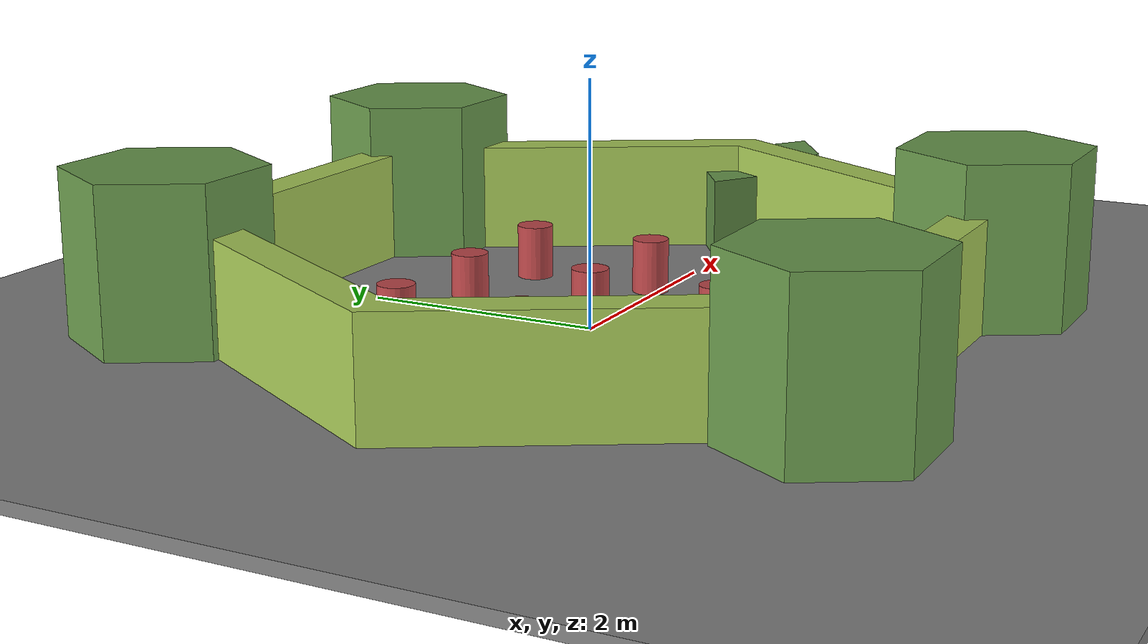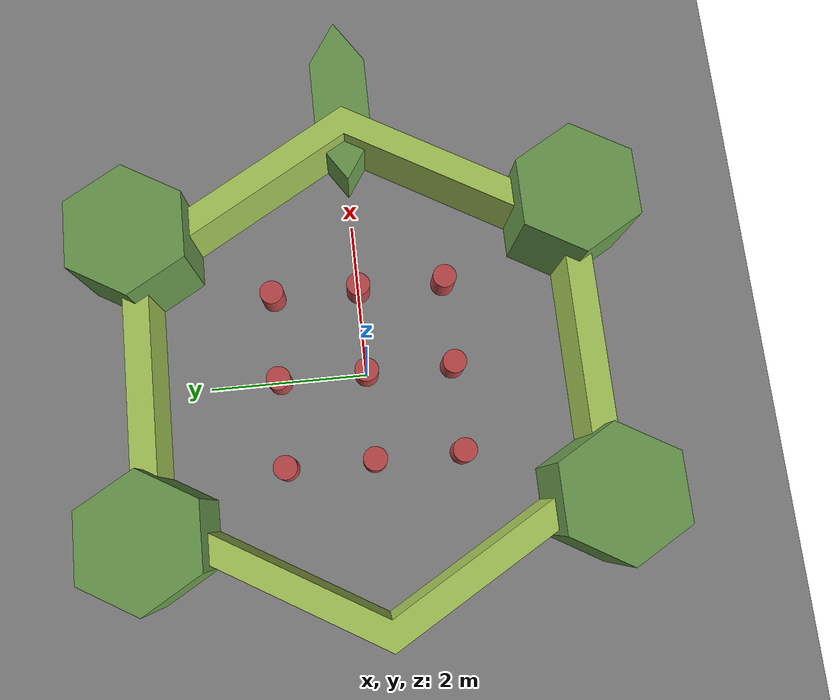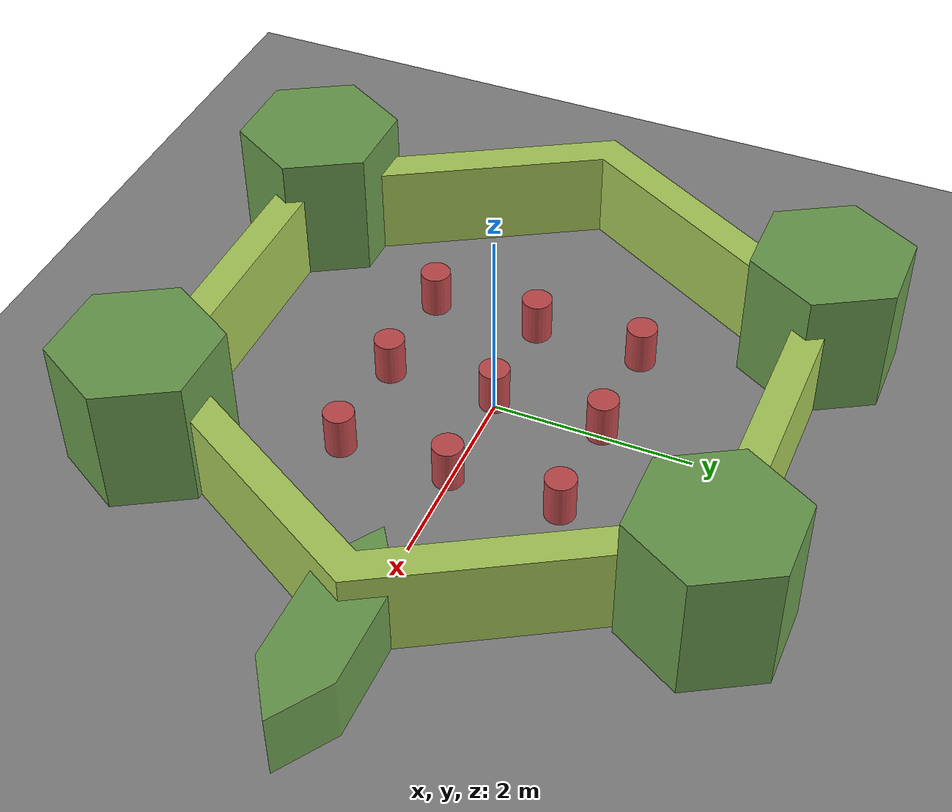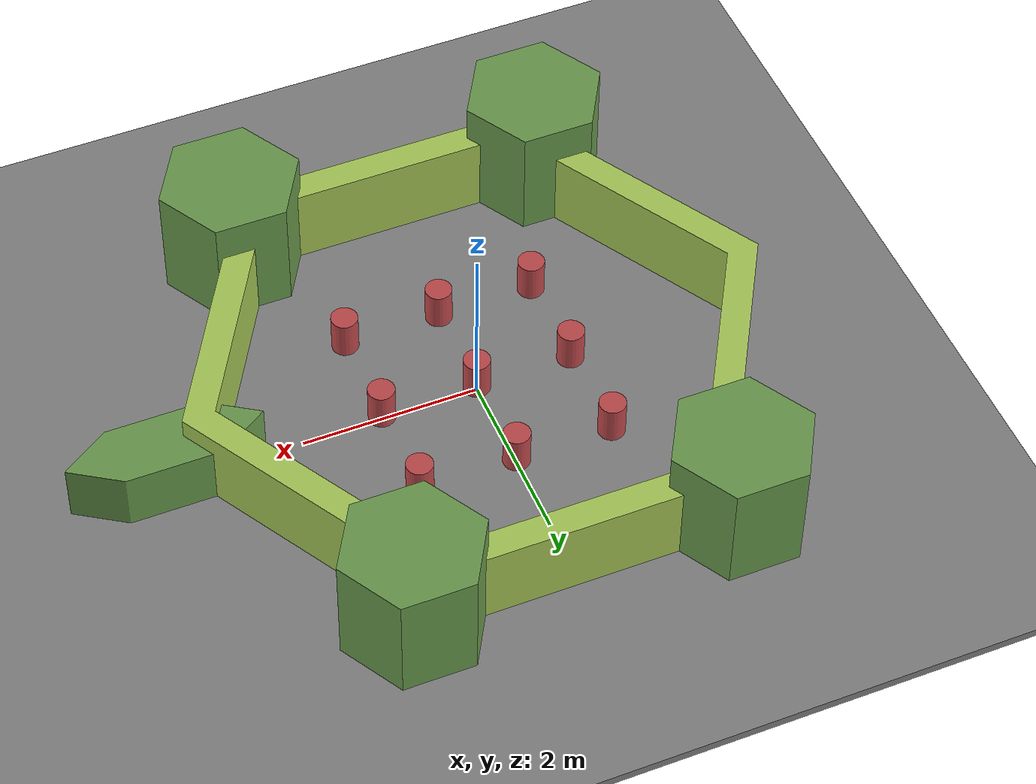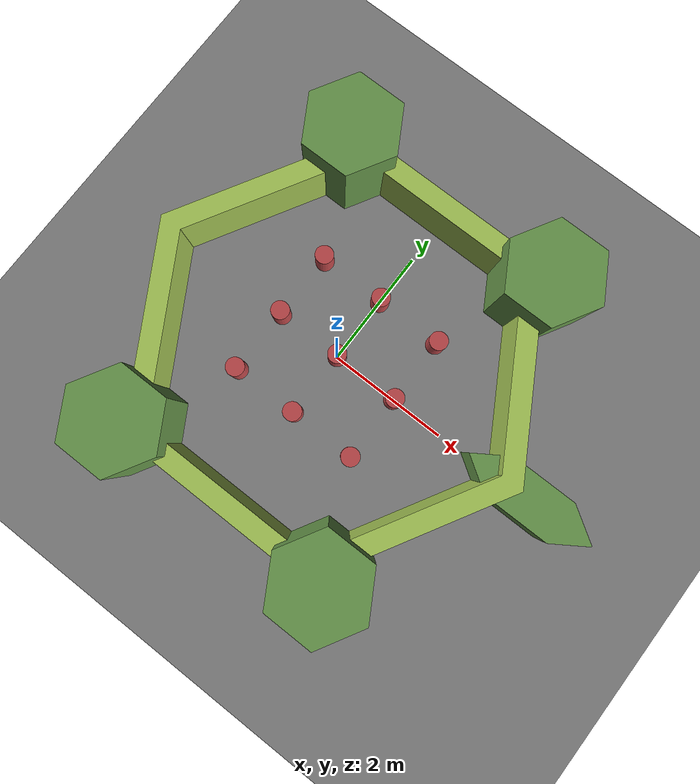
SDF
<?xml version="1.0" ?>
<sdf version="1.8">
  <world name="demo">
    <plugin
      filename="ignition-gazebo-physics-system"
      name="ignition::gazebo::systems::Physics">
    </plugin>
    <plugin
      filename="ignition-gazebo-sensors-system"
      name="ignition::gazebo::systems::Sensors">
      <render_engine>ogre2</render_engine>
    </plugin>
    <plugin
      filename="ignition-gazebo-scene-broadcaster-system"
      name="ignition::gazebo::systems::SceneBroadcaster">
    </plugin>
    <plugin
      filename="ignition-gazebo-user-commands-system"
      name="ignition::gazebo::systems::UserCommands">
    </plugin>

    <light name="sun" type="directional">
      <cast_shadows>true</cast_shadows>
      <pose>0 0 10 0 0 0</pose>
      <diffuse>0.8 0.8 0.8 1</diffuse>
      <specular>0.2 0.2 0.2 1</specular>
      <attenuation>
        <range>1000</range>
        <constant>0.9</constant>
        <linear>0.01</linear>
        <quadratic>0.001</quadratic>
      </attenuation>
      <direction>-0.5 0.1 -0.9</direction>
    </light>

    <model name="ground_plane">
      <static>true</static>
      <link name="link">
        <collision name="collision">
          <geometry>
            <plane>
              <normal>0 0 1</normal>
              <size>100 100</size>
            </plane>
          </geometry>
        </collision>
        <visual name="visual">
          <geometry>
            <plane>
              <normal>0 0 1</normal>
              <size>100 100</size>
            </plane>
          </geometry>
          <material>
            <ambient>0.8 0.8 0.8 1</ambient>
            <diffuse>0.8 0.8 0.8 1</diffuse>
            <specular>0.8 0.8 0.8 1</specular>
          </material>
        </visual>
      </link>
    </model>

    <model name="turtlebot3_world">
      <static>1</static>
      <include>
        <uri>model://turtlebot3_world</uri>
      </include>
    </model>

  </world>
</sdf>

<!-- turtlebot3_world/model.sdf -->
<sdf version='1.5'>
    <!-- Draw Circle -->
    <model name='ros_symbol'>
      <static>1</static>

    <link name="chao">

      <collision name="chao">
        <geometry>
          <plane>
            <normal>0 0 1</normal>
            <size>100 100</size>
          </plane>
        </geometry>

        <surface>
          <friction>
            <ode>
              <mu>0.5</mu>
              <mu2>0.5</mu2>
              <slip1>0.05</slip1>
              <slip2>0.05</slip2>
            </ode>
          </friction>

          <contact>
            <ode>
              <kp>100000</kp>
              <kd>1</kd>
            </ode>
          </contact>
        </surface>
      </collision>

      <visual name="chao">
        <geometry>
          <plane>
            <normal>0 0 1</normal>
            <size>100 100</size>
          </plane>
        </geometry>

        <material>
          <ambient>0.5 0.5 0.5 1</ambient>
          <diffuse>0.5 0.5 0.5 1</diffuse>
        </material>
      </visual>

    </link>

      <link name='symbol'>
        <collision name='one_one'>
          <pose>-1.1 -1.1 0.25 0 0 0</pose>
          <geometry>
            <cylinder>
              <radius>0.15</radius>
              <length>0.5</length>
            </cylinder>
          </geometry>
          <max_contacts>10</max_contacts>
          <surface>
            <bounce/>
            <friction>
              <ode/>
            </friction>
            <contact>
              <ode/>
            </contact>
          </surface>
        </collision>

        <visual name='one_one'>
          <pose>-1.1 -1.1 0.25 0 0 0</pose>
          <geometry>
            <cylinder>
              <radius>0.15</radius>
              <length>0.5</length>
            </cylinder>
          </geometry>
          <material>
            <ambient>.74 .28 .29 1</ambient>
            <diffuse>.74 .28 .29 1</diffuse>
            <specular>1 1 1 1</specular>
          </material>
        </visual>

        <collision name='one_two'>
          <pose>-1.1 0 0.25 0 0 0</pose>
          <geometry>
            <cylinder>
              <radius>0.15</radius>
              <length>0.5</length>
            </cylinder>
          </geometry>
          <max_contacts>10</max_contacts>
          <surface>
            <bounce/>
            <friction>
              <ode/>
            </friction>
            <contact>
              <ode/>
            </contact>
          </surface>
        </collision>

        <visual name='one_two'>
          <pose>-1.1 0 0.25 0 0 0</pose>
          <geometry>
            <cylinder>
              <radius>0.15</radius>
              <length>0.5</length>
            </cylinder>
          </geometry>
          <material>
            <ambient>.74 .28 .29 1</ambient>
            <diffuse>.74 .28 .29 1</diffuse>
            <specular>1 1 1 1</specular>
          </material>
        </visual>

        <collision name='one_three'>
          <pose>-1.1 1.1 0.25 0 0 0</pose>
          <geometry>
            <cylinder>
              <radius>0.15</radius>
              <length>0.5</length>
            </cylinder>
          </geometry>
          <max_contacts>10</max_contacts>
          <surface>
            <bounce/>
            <friction>
              <ode/>
            </friction>
            <contact>
              <ode/>
            </contact>
          </surface>
        </collision>

        <visual name='one_three'>
          <pose>-1.1 1.1 0.25 0 0 0</pose>
          <geometry>
            <cylinder>
              <radius>0.15</radius>
              <length>0.5</length>
            </cylinder>
          </geometry>
          <material>
            <ambient>.74 .28 .29 1</ambient>
            <diffuse>.74 .28 .29 1</diffuse>
            <specular>1 1 1 1</specular>
          </material>
        </visual>

        <collision name='two_one'>
          <pose>0 -1.1 0.25 0 0 0</pose>
          <geometry>
            <cylinder>
              <radius>0.15</radius>
              <length>0.5</length>
            </cylinder>
          </geometry>
          <max_contacts>10</max_contacts>
          <surface>
            <bounce/>
            <friction>
              <ode/>
            </friction>
            <contact>
              <ode/>
            </contact>
          </surface>
        </collision>

        <visual name='two_one'>
          <pose>0 -1.1 0.25 0 0 0</pose>
          <geometry>
            <cylinder>
              <radius>0.15</radius>
              <length>0.5</length>
            </cylinder>
          </geometry>
          <material>
            <ambient>.74 .28 .29 1</ambient>
            <diffuse>.74 .28 .29 1</diffuse>
            <specular>1 1 1 1</specular>
          </material>
        </visual>

        <collision name='two_two'>
          <pose>0 0 0.25 0 0 0</pose>
          <geometry>
            <cylinder>
              <radius>0.15</radius>
              <length>0.5</length>
            </cylinder>
          </geometry>
          <max_contacts>10</max_contacts>
          <surface>
            <bounce/>
            <friction>
              <ode/>
            </friction>
            <contact>
              <ode/>
            </contact>
          </surface>
        </collision>

        <visual name='two_two'>
          <pose>0 0 0.25 0 0 0</pose>
          <geometry>
            <cylinder>
              <radius>0.15</radius>
              <length>0.5</length>
            </cylinder>
          </geometry>
          <material>
            <ambient>.74 .28 .29 1</ambient>
            <diffuse>.74 .28 .29 1</diffuse>
            <specular>1 1 1 1</specular>
          </material>
        </visual>

        <collision name='two_three'>
          <pose>0 1.1 0.25 0 0 0</pose>
          <geometry>
            <cylinder>
              <radius>0.15</radius>
              <length>0.5</length>
            </cylinder>
          </geometry>
          <max_contacts>10</max_contacts>
          <surface>
            <bounce/>
            <friction>
              <ode/>
            </friction>
            <contact>
              <ode/>
            </contact>
          </surface>
        </collision>

        <visual name='two_three'>
          <pose>0 1.1 0.25 0 0 0</pose>
          <geometry>
            <cylinder>
              <radius>0.15</radius>
              <length>0.5</length>
            </cylinder>
          </geometry>
          <material>
            <ambient>.74 .28 .29 1</ambient>
            <diffuse>.74 .28 .29 1</diffuse>
            <specular>1 1 1 1</specular>
          </material>
        </visual>

        <collision name='three_one'>
          <pose>1.1 -1.1 0.25 0 0 0</pose>
          <geometry>
            <cylinder>
              <radius>0.15</radius>
              <length>0.5</length>
            </cylinder>
          </geometry>
          <max_contacts>10</max_contacts>
          <surface>
            <bounce/>
            <friction>
              <ode/>
            </friction>
            <contact>
              <ode/>
            </contact>
          </surface>
        </collision>

        <visual name='three_one'>
          <pose>1.1 -1.1 0.25 0 0 0</pose>
          <geometry>
            <cylinder>
              <radius>0.15</radius>
              <length>0.5</length>
            </cylinder>
          </geometry>
          <material>
            <ambient>.74 .28 .29 1</ambient>
            <diffuse>.74 .28 .29 1</diffuse>
            <specular>1 1 1 1</specular>
          </material>
        </visual>

        <collision name='three_two'>
          <pose>1.1 0 0.25 0 0 0</pose>
          <geometry>
            <cylinder>
              <radius>0.15</radius>
              <length>0.5</length>
            </cylinder>
          </geometry>
          <max_contacts>10</max_contacts>
          <surface>
            <bounce/>
            <friction>
              <ode/>
            </friction>
            <contact>
              <ode/>
            </contact>
          </surface>
        </collision>

        <visual name='three_two'>
          <pose>1.1 0 0.25 0 0 0</pose>
          <geometry>
            <cylinder>
              <radius>0.15</radius>
              <length>0.5</length>
            </cylinder>
          </geometry>
          <material>
            <ambient>.74 .28 .29 1</ambient>
            <diffuse>.74 .28 .29 1</diffuse>
            <specular>1 1 1 1</specular>
          </material>
        </visual>

        <collision name='three_three'>
          <pose>1.1 1.1 0.25 0 0 0</pose>
          <geometry>
            <cylinder>
              <radius>0.15</radius>
              <length>0.5</length>
            </cylinder>
          </geometry>
          <max_contacts>10</max_contacts>
          <surface>
            <bounce/>
            <friction>
              <ode/>
            </friction>
            <contact>
              <ode/>
            </contact>
          </surface>
        </collision>

        <visual name='three_three'>
          <pose>1.1 1.1 0.25 0 0 0</pose>
          <geometry>
            <cylinder>
              <radius>0.15</radius>
              <length>0.5</length>
            </cylinder>
          </geometry>
          <material>
            <ambient>.74 .28 .29 1</ambient>
            <diffuse>.74 .28 .29 1</diffuse>
            <specular>1 1 1 1</specular>
          </material>
        </visual>

        <!-- Draw Hexagon -->
        <collision name='head'>
          <pose>3.5 0 0 0 0 0</pose>
          <geometry>
            <mesh>
              <uri>meshes/hexagon.dae</uri>
              <scale>.74 .28 .29</scale>
            </mesh>
          </geometry>
          <max_contacts>10</max_contacts>
          <surface>
            <bounce/>
            <friction>
              <ode/>
            </friction>
            <contact>
              <ode/>
            </contact>
          </surface>
        </collision>

        <visual name='head'>
          <pose>3.5 0 0 0 0 0</pose>
          <geometry>
            <mesh>
              <uri>meshes/hexagon.dae</uri>
              <scale>.74 .28 .29</scale>
            </mesh>
          </geometry>
          <material>
            <ambient>0.41 0.6 0.30 1</ambient>
            <diffuse>0.41 0.6 0.30 1</diffuse>
            <specular>1 1 1 1</specular>
          </material>
        </visual>

        <collision name='left_hand'>
          <pose>1.8 2.7 0 0 0 0</pose>
          <geometry>
            <mesh>
              <uri>meshes/hexagon.dae</uri>
              <scale>0.55 0.55 0.55</scale>
            </mesh>
          </geometry>
          <max_contacts>10</max_contacts>
          <surface>
            <bounce/>
            <friction>
              <ode/>
            </friction>
            <contact>
              <ode/>
            </contact>
          </surface>
        </collision>

        <visual name='left_hand'>
          <pose>1.8 2.7 0 0 0 0</pose>
          <geometry>
            <mesh>
              <uri>meshes/hexagon.dae</uri>
              <scale>0.55 0.55 0.55</scale>
            </mesh>
          </geometry>
          <material>
            <ambient>0.41 0.6 0.30 1</ambient>
            <diffuse>0.41 0.6 0.30 1</diffuse>
            <specular>1 1 1 1</specular>
          </material>
        </visual>

        <collision name='right_hand'>
          <pose>1.8 -2.7 0 0 0 0</pose>
          <geometry>
            <mesh>
              <uri>meshes/hexagon.dae</uri>
              <scale>0.55 0.55 0.55</scale>
            </mesh>
          </geometry>
          <max_contacts>10</max_contacts>
          <surface>
            <bounce/>
            <friction>
              <ode/>
            </friction>
            <contact>
              <ode/>
            </contact>
          </surface>
        </collision>

        <visual name='right_hand'>
          <pose>1.8 -2.7 0 0 0 0</pose>
          <geometry>
            <mesh>
              <uri>meshes/hexagon.dae</uri>
              <scale>0.55 0.55 0.55</scale>
            </mesh>
          </geometry>
          <material>
            <ambient>0.41 0.6 0.30 1</ambient>
            <diffuse>0.41 0.6 0.30 1</diffuse>
            <specular>1 1 1 1</specular>
          </material>
        </visual>

        <collision name='left_foot'>
          <pose>-1.8 2.7 0 0 0 0</pose>
          <geometry>
            <mesh>
              <uri>meshes/hexagon.dae</uri>
              <scale>0.55 0.55 0.55</scale>
            </mesh>
          </geometry>
          <max_contacts>10</max_contacts>
          <surface>
            <bounce/>
            <friction>
              <ode/>
            </friction>
            <contact>
              <ode/>
            </contact>
          </surface>
        </collision>

        <visual name='left_foot'>
          <pose>-1.8 2.7 0 0 0 0</pose>
          <geometry>
            <mesh>
              <uri>meshes/hexagon.dae</uri>
              <scale>0.55 0.55 0.55</scale>
            </mesh>
          </geometry>
          <material>
            <ambient>0.41 0.6 0.30 1</ambient>
            <diffuse>0.41 0.6 0.30 1</diffuse>
            <specular>1 1 1 1</specular>
          </material>
        </visual>

        <collision name='right_foot'>
          <pose>-1.8 -2.7 0 0 0 0</pose>
          <geometry>
            <mesh>
              <uri>meshes/hexagon.dae</uri>
              <scale>0.55 0.55 0.55</scale>
            </mesh>
          </geometry>
          <max_contacts>10</max_contacts>
          <surface>
            <bounce/>
            <friction>
              <ode/>
            </friction>
            <contact>
              <ode/>
            </contact>
          </surface>
        </collision>

        <visual name='right_foot'>
          <pose>-1.8 -2.7 0 0 0 0</pose>
          <geometry>
            <mesh>
              <uri>meshes/hexagon.dae</uri>
              <scale>0.55 0.55 0.55</scale>
            </mesh>
          </geometry>
          <material>
            <ambient>0.41 0.6 0.30 1</ambient>
            <diffuse>0.41 0.6 0.30 1</diffuse>
            <specular>1 1 1 1</specular>
          </material>
        </visual>

        <!-- Draw Wall -->
        <collision name='body'>
        <pose>0 0 -0.3 0 0 -1.5708</pose>
        <geometry>
          <mesh>
            <uri>meshes/wall.dae</uri>
            <scale>0.25 0.25 0.25</scale>
          </mesh>
        </geometry>
        <max_contacts>10</max_contacts>
        <surface>
          <bounce/>
          <friction>
            <ode/>
          </friction>
          <contact>
            <ode/>
          </contact>
        </surface>
      </collision>

      <visual name='body'>
        <pose>0 0 -0.3 0 0 -1.5708</pose>
        <geometry>
          <mesh>
            <uri>meshes/wall.dae</uri>
            <scale>0.25 0.25 0.25</scale>
          </mesh>
        </geometry>
          <material>
            <ambient>0.65 0.78 0.34 1</ambient>
            <diffuse>0.65 0.78 0.34 1</diffuse>
            <specular>1 1 1 1</specular>
          </material>
      </visual>
    </link>
  </model>
</sdf>
